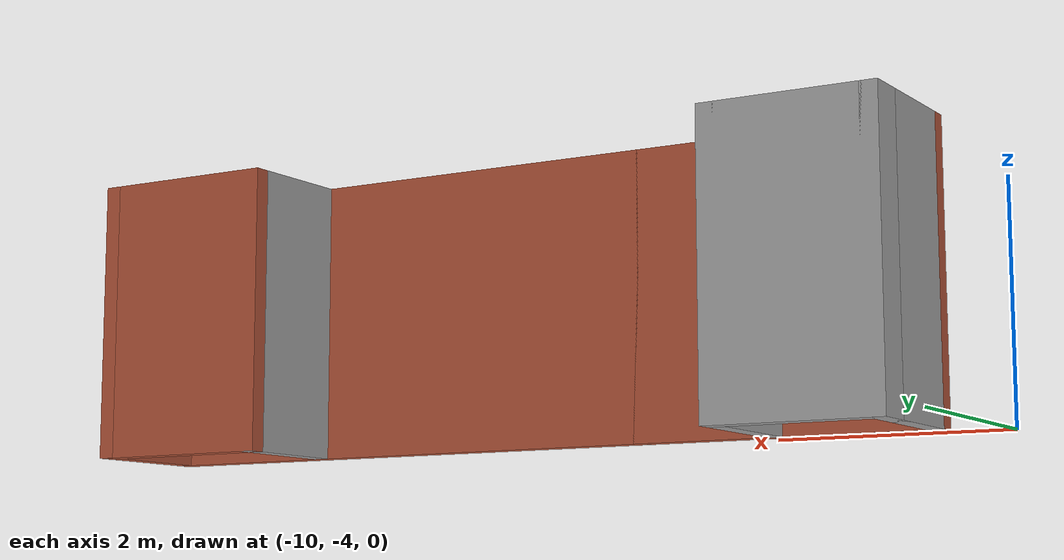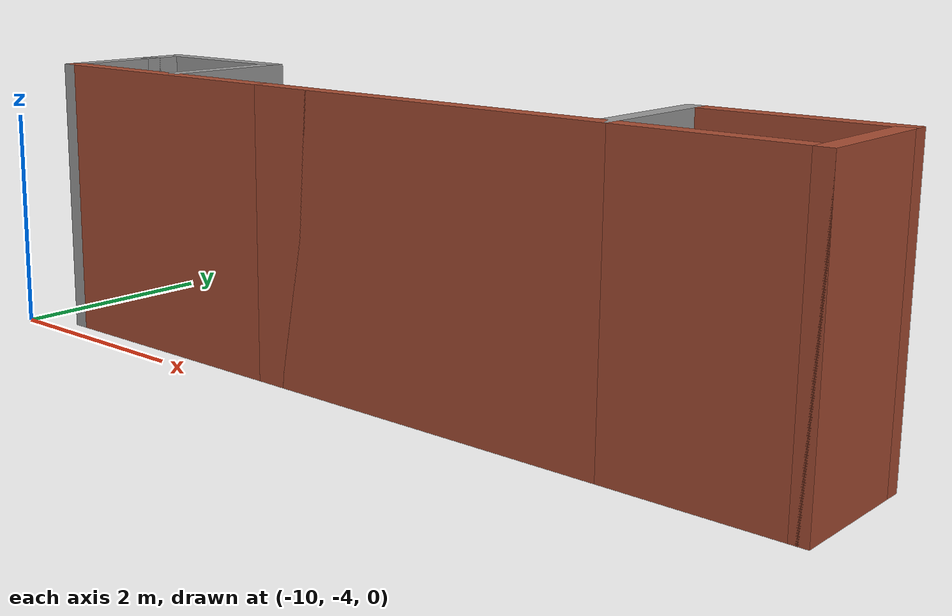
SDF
<?xml version='1.0'?>
<sdf version='1.7'>
  <model name='test'>
    <pose>-4.76923 -1.90106 0 0 -0 0</pose>
    <link name='Wall_0'>
      <collision name='Wall_0_Collision'>
        <geometry>
          <box>
            <size>5 0.15 2.5</size>
          </box>
        </geometry>
        <pose>0 0 1.25 0 -0 0</pose>
      </collision>
      <visual name='Wall_0_Visual'>
        <pose>0 0 1.25 0 -0 0</pose>
        <geometry>
          <box>
            <size>5 0.15 2.5</size>
          </box>
        </geometry>
        <material>
          <script>
            <uri>file://media/materials/scripts/gazebo.material</uri>
            <name>Gazebo/Bricks</name>
          </script>
          <ambient>1 1 1 1</ambient>
        </material>
        <meta>
          <layer>0</layer>
        </meta>
      </visual>
      <pose>0.330769 -1.82606 0 0 -0 0</pose>
    </link>
    <link name='Wall_1'>
      <collision name='Wall_1_Collision'>
        <geometry>
          <box>
            <size>1.25 0.15 2.5</size>
          </box>
        </geometry>
        <pose>0 0 1.25 0 -0 0</pose>
      </collision>
      <visual name='Wall_1_Visual'>
        <pose>0 0 1.25 0 -0 0</pose>
        <geometry>
          <box>
            <size>1.25 0.15 2.5</size>
          </box>
        </geometry>
        <material>
          <script>
            <uri>file://media/materials/scripts/gazebo.material</uri>
            <name>Gazebo/Bricks</name>
          </script>
          <ambient>1 1 1 1</ambient>
        </material>
        <meta>
          <layer>0</layer>
        </meta>
      </visual>
      <pose>2.75577 -1.27606 0 0 -0 1.5708</pose>
    </link>
    <link name='Wall_2'>
      <collision name='Wall_2_Collision'>
        <geometry>
          <box>
            <size>1.75 0.15 2.5</size>
          </box>
        </geometry>
        <pose>0 0 1.25 0 -0 0</pose>
      </collision>
      <visual name='Wall_2_Visual'>
        <pose>0 0 1.25 0 -0 0</pose>
        <geometry>
          <box>
            <size>1.75 0.15 2.5</size>
          </box>
        </geometry>
        <material>
          <script>
            <uri>file://media/materials/scripts/gazebo.material</uri>
            <name>Gazebo/Bricks</name>
          </script>
          <ambient>1 1 1 1</ambient>
        </material>
        <meta>
          <layer>0</layer>
        </meta>
      </visual>
      <pose>1.95577 -0.726058 0 0 -0 3.14159</pose>
    </link>
    <link name='Wall_3'>
      <collision name='Wall_3_Collision'>
        <geometry>
          <box>
            <size>1.25 0.15 2.5</size>
          </box>
        </geometry>
        <pose>0 0 1.25 0 -0 0</pose>
      </collision>
      <visual name='Wall_3_Visual'>
        <pose>0 0 1.25 0 -0 0</pose>
        <geometry>
          <box>
            <size>1.25 0.15 2.5</size>
          </box>
        </geometry>
        <material>
          <script>
            <uri>file://media/materials/scripts/gazebo.material</uri>
            <name>Gazebo/Grey</name>
          </script>
          <ambient>1 1 1 1</ambient>
        </material>
        <meta>
          <layer>0</layer>
        </meta>
      </visual>
      <pose>1.15577 -1.27606 0 0 -0 -1.5708</pose>
    </link>
    <link name='Wall_4'>
      <collision name='Wall_4_Collision'>
        <geometry>
          <box>
            <size>6 0.15 2.5</size>
          </box>
        </geometry>
        <pose>0 0 1.25 0 -0 0</pose>
      </collision>
      <visual name='Wall_4_Visual'>
        <pose>0 0 1.25 0 -0 0</pose>
        <geometry>
          <box>
            <size>6 0.15 2.5</size>
          </box>
        </geometry>
        <material>
          <script>
            <uri>file://media/materials/scripts/gazebo.material</uri>
            <name>Gazebo/Bricks</name>
          </script>
          <ambient>1 1 1 1</ambient>
        </material>
        <meta>
          <layer>0</layer>
        </meta>
      </visual>
      <pose>-1.76923 -1.82606 0 0 -0 3.14159</pose>
    </link>
    <link name='Wall_5'>
      <collision name='Wall_5_Collision'>
        <geometry>
          <box>
            <size>1 0.15 2.5</size>
          </box>
        </geometry>
        <pose>0 0 1.25 0 -0 0</pose>
      </collision>
      <visual name='Wall_5_Visual'>
        <pose>0 0 1.25 0 -0 0</pose>
        <geometry>
          <box>
            <size>1 0.15 2.5</size>
          </box>
        </geometry>
        <material>
          <script>
            <uri>file://media/materials/scripts/gazebo.material</uri>
            <name>Gazebo/Grey</name>
          </script>
          <ambient>1 1 1 1</ambient>
        </material>
        <meta>
          <layer>0</layer>
        </meta>
      </visual>
      <pose>-4.69423 -1.40106 0 0 -0 1.5708</pose>
    </link>
    <link name='Wall_6'>
      <collision name='Wall_6_Collision'>
        <geometry>
          <box>
            <size>0.15 0.15 2.5</size>
          </box>
        </geometry>
        <pose>0 0 1.25 0 -0 0</pose>
      </collision>
      <visual name='Wall_6_Visual'>
        <pose>0 0 1.25 0 -0 0</pose>
        <geometry>
          <box>
            <size>0.15 0.15 2.5</size>
          </box>
        </geometry>
        <material>
          <script>
            <uri>file://media/materials/scripts/gazebo.material</uri>
            <name>Gazebo/Grey</name>
          </script>
          <ambient>1 1 1 1</ambient>
        </material>
        <meta>
          <layer>0</layer>
        </meta>
      </visual>
      <pose>-4.69423 -0.976058 0 0 -0 0</pose>
    </link>
    <link name='Wall_7'>
      <collision name='Wall_7_Collision'>
        <geometry>
          <box>
            <size>0.5 0.15 2.5</size>
          </box>
        </geometry>
        <pose>0 0 1.25 0 -0 0</pose>
      </collision>
      <visual name='Wall_7_Visual'>
        <pose>0 0 1.25 0 -0 0</pose>
        <geometry>
          <box>
            <size>0.5 0.15 2.5</size>
          </box>
        </geometry>
        <material>
          <script>
            <uri>file://media/materials/scripts/gazebo.material</uri>
            <name>Gazebo/Grey</name>
          </script>
          <ambient>1 1 1 1</ambient>
        </material>
        <meta>
          <layer>0</layer>
        </meta>
      </visual>
      <pose>-4.69423 -0.801059 0 0 -0 1.5708</pose>
    </link>
    <link name='Wall_8'>
      <collision name='Wall_8_Collision'>
        <geometry>
          <box>
            <size>1.5 0.15 2.5</size>
          </box>
        </geometry>
        <pose>0 0 1.25 0 -0 0</pose>
      </collision>
      <visual name='Wall_8_Visual'>
        <pose>0 0 1.25 0 -0 0</pose>
        <geometry>
          <box>
            <size>1.5 0.15 2.5</size>
          </box>
        </geometry>
        <material>
          <script>
            <uri>file://media/materials/scripts/gazebo.material</uri>
            <name>Gazebo/Grey</name>
          </script>
          <ambient>1 1 1 1</ambient>
        </material>
        <meta>
          <layer>0</layer>
        </meta>
      </visual>
      <pose>-4.01923 -0.626058 0 0 -0 0</pose>
    </link>
    <link name='Wall_9'>
      <collision name='Wall_9_Collision'>
        <geometry>
          <box>
            <size>1.25 0.15 2.5</size>
          </box>
        </geometry>
        <pose>0 0 1.25 0 -0 0</pose>
      </collision>
      <visual name='Wall_9_Visual'>
        <pose>0 0 1.25 0 -0 0</pose>
        <geometry>
          <box>
            <size>1.25 0.15 2.5</size>
          </box>
        </geometry>
        <material>
          <script>
            <uri>file://media/materials/scripts/gazebo.material</uri>
            <name>Gazebo/Grey</name>
          </script>
          <ambient>1 1 1 1</ambient>
        </material>
        <meta>
          <layer>0</layer>
        </meta>
      </visual>
      <pose>-3.34423 -1.17606 0 0 -0 -1.5708</pose>
    </link>
    <static>1</static>
  </model>
</sdf>
